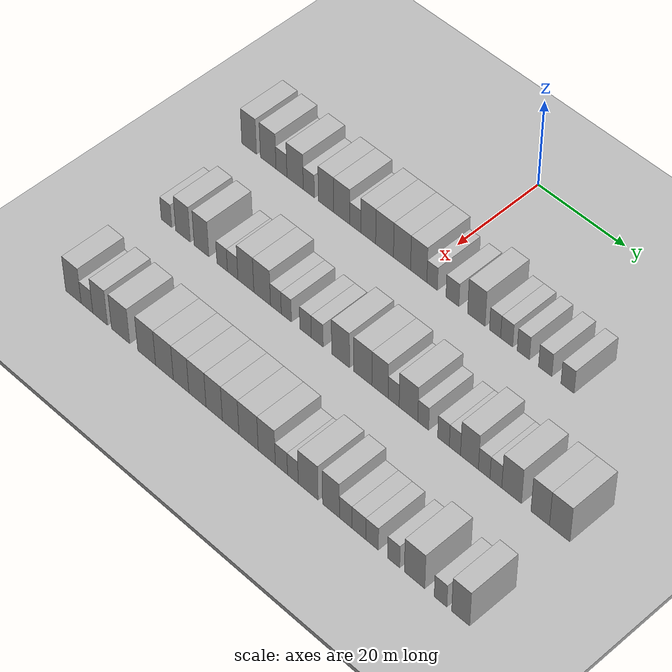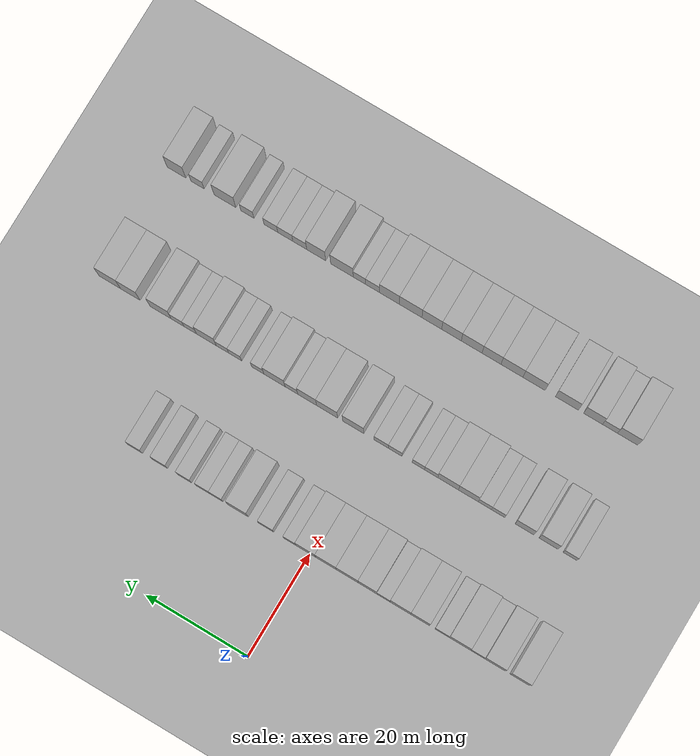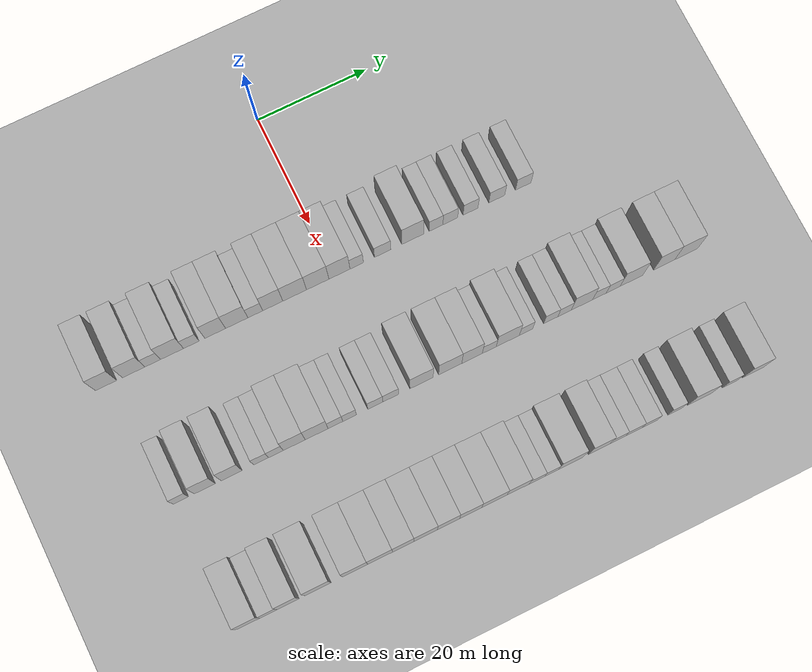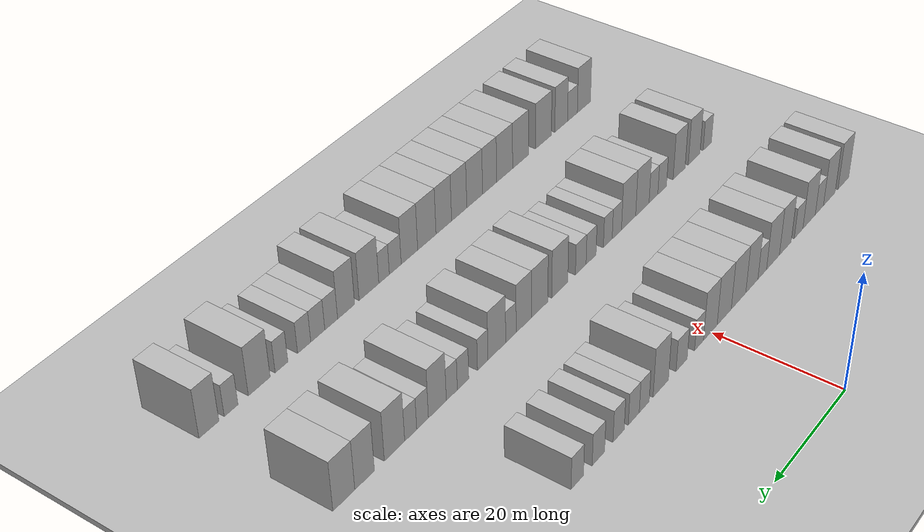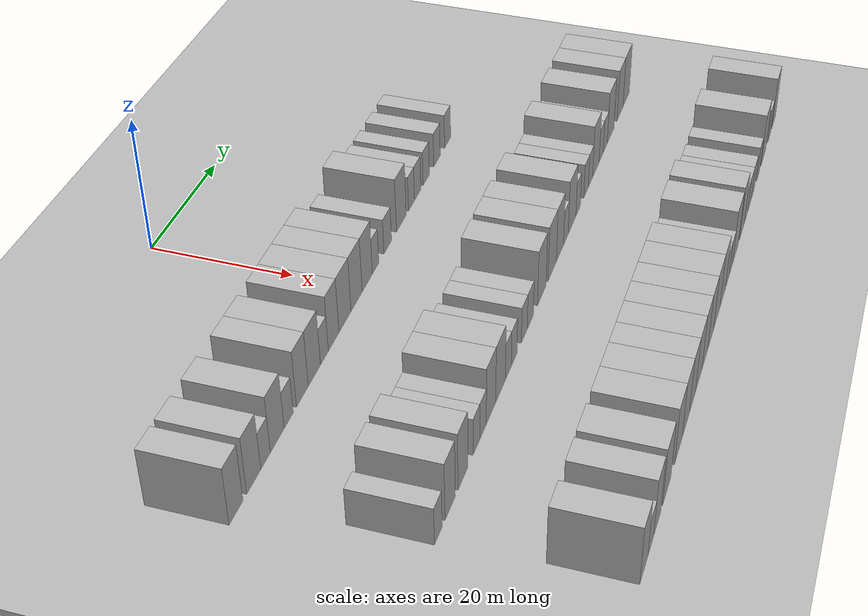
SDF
<sdf version="1.6">
 <world name="default">
  <include><name>ground_plane_1</name><uri>model://HANNAS_ground_plane</uri></include>
  <include>
   <name>ground_plane_2</name>
   <uri>model://HANNAS_ground_plane</uri>
   <pose>100 0 0  0 0 0</pose>
  </include>
  <model name="building_52">
   <static>1</static>
   <pose>25.0000 -40.7150 0 0.000000 0.000000 0.000000</pose>
   <link name="link">
    <pose>0 0 4.50 0 0 0</pose>
    <collision name="collision"><geometry><box><size>10.0000 3.7319 9.0000</size></box></geometry></collision>
    <visual name="visual">
     <cast_shadows>0</cast_shadows>
     <geometry><box><size>10.0000 3.7319 9.0000</size></box></geometry>
     <material>
      <script>
       <uri>model://HANNAS_wall/materials/scripts</uri>
       <uri>model://HANNAS_wall/materials/textures</uri>
       <name>vrc/HANNAS_wall</name>
      </script>
     </material>
    </visual>
   </link>
  </model>
  <model name="building_53">
   <static>1</static>
   <pose>25.0000 -35.8781 0 0.000000 0.000000 0.000000</pose>
   <link name="link">
    <pose>0 0 4.50 0 0 0</pose>
    <collision name="collision"><geometry><box><size>10.0000 3.9419 9.0000</size></box></geometry></collision>
    <visual name="visual">
     <cast_shadows>0</cast_shadows>
     <geometry><box><size>10.0000 3.9419 9.0000</size></box></geometry>
     <material>
      <script>
       <uri>model://HANNAS_wall/materials/scripts</uri>
       <uri>model://HANNAS_wall/materials/textures</uri>
       <name>vrc/HANNAS_wall</name>
      </script>
     </material>
    </visual>
   </link>
  </model>
  <model name="building_54">
   <static>1</static>
   <pose>25.0000 -32.5363 0 0.000000 0.000000 0.000000</pose>
   <link name="link">
    <pose>0 0 3.00 0 0 0</pose>
    <collision name="collision"><geometry><box><size>10.0000 2.7415 6.0000</size></box></geometry></collision>
    <visual name="visual">
     <cast_shadows>0</cast_shadows>
     <geometry><box><size>10.0000 2.7415 6.0000</size></box></geometry>
     <material>
      <script>
       <uri>model://HANNAS_wall/materials/scripts</uri>
       <uri>model://HANNAS_wall/materials/textures</uri>
       <name>vrc/HANNAS_wall</name>
      </script>
     </material>
    </visual>
   </link>
  </model>
  <model name="building_55">
   <static>1</static>
   <pose>25.0000 -29.1305 0 0.000000 0.000000 0.000000</pose>
   <link name="link">
    <pose>0 0 4.50 0 0 0</pose>
    <collision name="collision"><geometry><box><size>10.0000 4.0701 9.0000</size></box></geometry></collision>
    <visual name="visual">
     <cast_shadows>0</cast_shadows>
     <geometry><box><size>10.0000 4.0701 9.0000</size></box></geometry>
     <material>
      <script>
       <uri>model://HANNAS_wall/materials/scripts</uri>
       <uri>model://HANNAS_wall/materials/textures</uri>
       <name>vrc/HANNAS_wall</name>
      </script>
     </material>
    </visual>
   </link>
  </model>
  <model name="building_56">
   <static>1</static>
   <pose>25.0000 -25.7157 0 0.000000 0.000000 0.000000</pose>
   <link name="link">
    <pose>0 0 3.00 0 0 0</pose>
    <collision name="collision"><geometry><box><size>10.0000 2.7596 6.0000</size></box></geometry></collision>
    <visual name="visual">
     <cast_shadows>0</cast_shadows>
     <geometry><box><size>10.0000 2.7596 6.0000</size></box></geometry>
     <material>
      <script>
       <uri>model://HANNAS_wall/materials/scripts</uri>
       <uri>model://HANNAS_wall/materials/textures</uri>
       <name>vrc/HANNAS_wall</name>
      </script>
     </material>
    </visual>
   </link>
  </model>
  <model name="building_57">
   <static>1</static>
   <pose>25.0000 -21.4884 0 0.000000 0.000000 0.000000</pose>
   <link name="link">
    <pose>0 0 4.50 0 0 0</pose>
    <collision name="collision"><geometry><box><size>10.0000 3.6951 9.0000</size></box></geometry></collision>
    <visual name="visual">
     <cast_shadows>0</cast_shadows>
     <geometry><box><size>10.0000 3.6951 9.0000</size></box></geometry>
     <material>
      <script>
       <uri>model://HANNAS_wall/materials/scripts</uri>
       <uri>model://HANNAS_wall/materials/textures</uri>
       <name>vrc/HANNAS_wall</name>
      </script>
     </material>
    </visual>
   </link>
  </model>
  <model name="building_58">
   <static>1</static>
   <pose>25.0000 -17.6564 0 0.000000 0.000000 0.000000</pose>
   <link name="link">
    <pose>0 0 4.50 0 0 0</pose>
    <collision name="collision"><geometry><box><size>10.0000 3.9688 9.0000</size></box></geometry></collision>
    <visual name="visual">
     <cast_shadows>0</cast_shadows>
     <geometry><box><size>10.0000 3.9688 9.0000</size></box></geometry>
     <material>
      <script>
       <uri>model://HANNAS_wall/materials/scripts</uri>
       <uri>model://HANNAS_wall/materials/textures</uri>
       <name>vrc/HANNAS_wall</name>
      </script>
     </material>
    </visual>
   </link>
  </model>
  <model name="building_59">
   <static>1</static>
   <pose>25.0000 -14.3592 0 0.000000 0.000000 0.000000</pose>
   <link name="link">
    <pose>0 0 3.00 0 0 0</pose>
    <collision name="collision"><geometry><box><size>10.0000 2.6255 6.0000</size></box></geometry></collision>
    <visual name="visual">
     <cast_shadows>0</cast_shadows>
     <geometry><box><size>10.0000 2.6255 6.0000</size></box></geometry>
     <material>
      <script>
       <uri>model://HANNAS_wall/materials/scripts</uri>
       <uri>model://HANNAS_wall/materials/textures</uri>
       <name>vrc/HANNAS_wall</name>
      </script>
     </material>
    </visual>
   </link>
  </model>
  <model name="building_60">
   <static>1</static>
   <pose>25.0000 -11.2459 0 0.000000 0.000000 0.000000</pose>
   <link name="link">
    <pose>0 0 4.50 0 0 0</pose>
    <collision name="collision"><geometry><box><size>10.0000 3.6013 9.0000</size></box></geometry></collision>
    <visual name="visual">
     <cast_shadows>0</cast_shadows>
     <geometry><box><size>10.0000 3.6013 9.0000</size></box></geometry>
     <material>
      <script>
       <uri>model://HANNAS_wall/materials/scripts</uri>
       <uri>model://HANNAS_wall/materials/textures</uri>
       <name>vrc/HANNAS_wall</name>
      </script>
     </material>
    </visual>
   </link>
  </model>
  <model name="building_61">
   <static>1</static>
   <pose>25.0000 -7.3244 0 0.000000 0.000000 0.000000</pose>
   <link name="link">
    <pose>0 0 4.50 0 0 0</pose>
    <collision name="collision"><geometry><box><size>10.0000 4.2416 9.0000</size></box></geometry></collision>
    <visual name="visual">
     <cast_shadows>0</cast_shadows>
     <geometry><box><size>10.0000 4.2416 9.0000</size></box></geometry>
     <material>
      <script>
       <uri>model://HANNAS_wall/materials/scripts</uri>
       <uri>model://HANNAS_wall/materials/textures</uri>
       <name>vrc/HANNAS_wall</name>
      </script>
     </material>
    </visual>
   </link>
  </model>
  <model name="building_62">
   <static>1</static>
   <pose>25.0000 -3.1860 0 0.000000 0.000000 0.000000</pose>
   <link name="link">
    <pose>0 0 4.50 0 0 0</pose>
    <collision name="collision"><geometry><box><size>10.0000 4.0352 9.0000</size></box></geometry></collision>
    <visual name="visual">
     <cast_shadows>0</cast_shadows>
     <geometry><box><size>10.0000 4.0352 9.0000</size></box></geometry>
     <material>
      <script>
       <uri>model://HANNAS_wall/materials/scripts</uri>
       <uri>model://HANNAS_wall/materials/textures</uri>
       <name>vrc/HANNAS_wall</name>
      </script>
     </material>
    </visual>
   </link>
  </model>
  <model name="building_63">
   <static>1</static>
   <pose>25.0000 0.7372 0 0.000000 0.000000 0.000000</pose>
   <link name="link">
    <pose>0 0 4.50 0 0 0</pose>
    <collision name="collision"><geometry><box><size>10.0000 3.8112 9.0000</size></box></geometry></collision>
    <visual name="visual">
     <cast_shadows>0</cast_shadows>
     <geometry><box><size>10.0000 3.8112 9.0000</size></box></geometry>
     <material>
      <script>
       <uri>model://HANNAS_wall/materials/scripts</uri>
       <uri>model://HANNAS_wall/materials/textures</uri>
       <name>vrc/HANNAS_wall</name>
      </script>
     </material>
    </visual>
   </link>
  </model>
  <model name="building_64">
   <static>1</static>
   <pose>25.0000 3.8599 0 0.000000 0.000000 0.000000</pose>
   <link name="link">
    <pose>0 0 3.00 0 0 0</pose>
    <collision name="collision"><geometry><box><size>10.0000 2.4341 6.0000</size></box></geometry></collision>
    <visual name="visual">
     <cast_shadows>0</cast_shadows>
     <geometry><box><size>10.0000 2.4341 6.0000</size></box></geometry>
     <material>
      <script>
       <uri>model://HANNAS_wall/materials/scripts</uri>
       <uri>model://HANNAS_wall/materials/textures</uri>
       <name>vrc/HANNAS_wall</name>
      </script>
     </material>
    </visual>
   </link>
  </model>
  <model name="building_65">
   <static>1</static>
   <pose>25.0000 8.5607 0 0.000000 0.000000 0.000000</pose>
   <link name="link">
    <pose>0 0 3.00 0 0 0</pose>
    <collision name="collision"><geometry><box><size>10.0000 2.9674 6.0000</size></box></geometry></collision>
    <visual name="visual">
     <cast_shadows>0</cast_shadows>
     <geometry><box><size>10.0000 2.9674 6.0000</size></box></geometry>
     <material>
      <script>
       <uri>model://HANNAS_wall/materials/scripts</uri>
       <uri>model://HANNAS_wall/materials/textures</uri>
       <name>vrc/HANNAS_wall</name>
      </script>
     </material>
    </visual>
   </link>
  </model>
  <model name="building_66">
   <static>1</static>
   <pose>25.0000 14.0289 0 0.000000 0.000000 0.000000</pose>
   <link name="link">
    <pose>0 0 4.50 0 0 0</pose>
    <collision name="collision"><geometry><box><size>10.0000 3.9691 9.0000</size></box></geometry></collision>
    <visual name="visual">
     <cast_shadows>0</cast_shadows>
     <geometry><box><size>10.0000 3.9691 9.0000</size></box></geometry>
     <material>
      <script>
       <uri>model://HANNAS_wall/materials/scripts</uri>
       <uri>model://HANNAS_wall/materials/textures</uri>
       <name>vrc/HANNAS_wall</name>
      </script>
     </material>
    </visual>
   </link>
  </model>
  <model name="building_67">
   <static>1</static>
   <pose>25.0000 18.2662 0 0.000000 0.000000 0.000000</pose>
   <link name="link">
    <pose>0 0 3.00 0 0 0</pose>
    <collision name="collision"><geometry><box><size>10.0000 2.5054 6.0000</size></box></geometry></collision>
    <visual name="visual">
     <cast_shadows>0</cast_shadows>
     <geometry><box><size>10.0000 2.5054 6.0000</size></box></geometry>
     <material>
      <script>
       <uri>model://HANNAS_wall/materials/scripts</uri>
       <uri>model://HANNAS_wall/materials/textures</uri>
       <name>vrc/HANNAS_wall</name>
      </script>
     </material>
    </visual>
   </link>
  </model>
  <model name="building_68">
   <static>1</static>
   <pose>25.0000 20.8726 0 0.000000 0.000000 0.000000</pose>
   <link name="link">
    <pose>0 0 3.00 0 0 0</pose>
    <collision name="collision"><geometry><box><size>10.0000 2.7074 6.0000</size></box></geometry></collision>
    <visual name="visual">
     <cast_shadows>0</cast_shadows>
     <geometry><box><size>10.0000 2.7074 6.0000</size></box></geometry>
     <material>
      <script>
       <uri>model://HANNAS_wall/materials/scripts</uri>
       <uri>model://HANNAS_wall/materials/textures</uri>
       <name>vrc/HANNAS_wall</name>
      </script>
     </material>
    </visual>
   </link>
  </model>
  <model name="building_69">
   <static>1</static>
   <pose>25.0000 24.5879 0 0.000000 0.000000 0.000000</pose>
   <link name="link">
    <pose>0 0 3.00 0 0 0</pose>
    <collision name="collision"><geometry><box><size>10.0000 2.7233 6.0000</size></box></geometry></collision>
    <visual name="visual">
     <cast_shadows>0</cast_shadows>
     <geometry><box><size>10.0000 2.7233 6.0000</size></box></geometry>
     <material>
      <script>
       <uri>model://HANNAS_wall/materials/scripts</uri>
       <uri>model://HANNAS_wall/materials/textures</uri>
       <name>vrc/HANNAS_wall</name>
      </script>
     </material>
    </visual>
   </link>
  </model>
  <model name="building_70">
   <static>1</static>
   <pose>25.0000 29.4149 0 0.000000 0.000000 0.000000</pose>
   <link name="link">
    <pose>0 0 3.00 0 0 0</pose>
    <collision name="collision"><geometry><box><size>10.0000 2.9307 6.0000</size></box></geometry></collision>
    <visual name="visual">
     <cast_shadows>0</cast_shadows>
     <geometry><box><size>10.0000 2.9307 6.0000</size></box></geometry>
     <material>
      <script>
       <uri>model://HANNAS_wall/materials/scripts</uri>
       <uri>model://HANNAS_wall/materials/textures</uri>
       <name>vrc/HANNAS_wall</name>
      </script>
     </material>
    </visual>
   </link>
  </model>
  <model name="building_71">
   <static>1</static>
   <pose>25.0000 34.3067 0 0.000000 0.000000 0.000000</pose>
   <link name="link">
    <pose>0 0 3.00 0 0 0</pose>
    <collision name="collision"><geometry><box><size>10.0000 2.8530 6.0000</size></box></geometry></collision>
    <visual name="visual">
     <cast_shadows>0</cast_shadows>
     <geometry><box><size>10.0000 2.8530 6.0000</size></box></geometry>
     <material>
      <script>
       <uri>model://HANNAS_wall/materials/scripts</uri>
       <uri>model://HANNAS_wall/materials/textures</uri>
       <name>vrc/HANNAS_wall</name>
      </script>
     </material>
    </visual>
   </link>
  </model>
  <model name="building_164">
   <static>1</static>
   <pose>47.0000 -37.5440 0 0.000000 0.000000 0.000000</pose>
   <link name="link">
    <pose>0 0 3.00 0 0 0</pose>
    <collision name="collision"><geometry><box><size>10.0000 2.6597 6.0000</size></box></geometry></collision>
    <visual name="visual">
     <cast_shadows>0</cast_shadows>
     <geometry><box><size>10.0000 2.6597 6.0000</size></box></geometry>
     <material>
      <script>
       <uri>model://HANNAS_wall/materials/scripts</uri>
       <uri>model://HANNAS_wall/materials/textures</uri>
       <name>vrc/HANNAS_wall</name>
      </script>
     </material>
    </visual>
   </link>
  </model>
  <model name="building_165">
   <static>1</static>
   <pose>47.0000 -33.3802 0 0.000000 0.000000 0.000000</pose>
   <link name="link">
    <pose>0 0 4.50 0 0 0</pose>
    <collision name="collision"><geometry><box><size>10.0000 3.6680 9.0000</size></box></geometry></collision>
    <visual name="visual">
     <cast_shadows>0</cast_shadows>
     <geometry><box><size>10.0000 3.6680 9.0000</size></box></geometry>
     <material>
      <script>
       <uri>model://HANNAS_wall/materials/scripts</uri>
       <uri>model://HANNAS_wall/materials/textures</uri>
       <name>vrc/HANNAS_wall</name>
      </script>
     </material>
    </visual>
   </link>
  </model>
  <model name="building_166">
   <static>1</static>
   <pose>47.0000 -28.7226 0 0.000000 0.000000 0.000000</pose>
   <link name="link">
    <pose>0 0 4.50 0 0 0</pose>
    <collision name="collision"><geometry><box><size>10.0000 3.6471 9.0000</size></box></geometry></collision>
    <visual name="visual">
     <cast_shadows>0</cast_shadows>
     <geometry><box><size>10.0000 3.6471 9.0000</size></box></geometry>
     <material>
      <script>
       <uri>model://HANNAS_wall/materials/scripts</uri>
       <uri>model://HANNAS_wall/materials/textures</uri>
       <name>vrc/HANNAS_wall</name>
      </script>
     </material>
    </visual>
   </link>
  </model>
  <model name="building_167">
   <static>1</static>
   <pose>47.0000 -23.6000 0 0.000000 0.000000 0.000000</pose>
   <link name="link">
    <pose>0 0 3.00 0 0 0</pose>
    <collision name="collision"><geometry><box><size>10.0000 2.5983 6.0000</size></box></geometry></collision>
    <visual name="visual">
     <cast_shadows>0</cast_shadows>
     <geometry><box><size>10.0000 2.5983 6.0000</size></box></geometry>
     <material>
      <script>
       <uri>model://HANNAS_wall/materials/scripts</uri>
       <uri>model://HANNAS_wall/materials/textures</uri>
       <name>vrc/HANNAS_wall</name>
      </script>
     </material>
    </visual>
   </link>
  </model>
  <model name="building_168">
   <static>1</static>
   <pose>47.0000 -21.0116 0 0.000000 0.000000 0.000000</pose>
   <link name="link">
    <pose>0 0 3.00 0 0 0</pose>
    <collision name="collision"><geometry><box><size>10.0000 2.5785 6.0000</size></box></geometry></collision>
    <visual name="visual">
     <cast_shadows>0</cast_shadows>
     <geometry><box><size>10.0000 2.5785 6.0000</size></box></geometry>
     <material>
      <script>
       <uri>model://HANNAS_wall/materials/scripts</uri>
       <uri>model://HANNAS_wall/materials/textures</uri>
       <name>vrc/HANNAS_wall</name>
      </script>
     </material>
    </visual>
   </link>
  </model>
  <model name="building_169">
   <static>1</static>
   <pose>47.0000 -17.7810 0 0.000000 0.000000 0.000000</pose>
   <link name="link">
    <pose>0 0 4.50 0 0 0</pose>
    <collision name="collision"><geometry><box><size>10.0000 3.8826 9.0000</size></box></geometry></collision>
    <visual name="visual">
     <cast_shadows>0</cast_shadows>
     <geometry><box><size>10.0000 3.8826 9.0000</size></box></geometry>
     <material>
      <script>
       <uri>model://HANNAS_wall/materials/scripts</uri>
       <uri>model://HANNAS_wall/materials/textures</uri>
       <name>vrc/HANNAS_wall</name>
      </script>
     </material>
    </visual>
   </link>
  </model>
  <model name="building_170">
   <static>1</static>
   <pose>47.0000 -13.8256 0 0.000000 0.000000 0.000000</pose>
   <link name="link">
    <pose>0 0 4.50 0 0 0</pose>
    <collision name="collision"><geometry><box><size>10.0000 4.0281 9.0000</size></box></geometry></collision>
    <visual name="visual">
     <cast_shadows>0</cast_shadows>
     <geometry><box><size>10.0000 4.0281 9.0000</size></box></geometry>
     <material>
      <script>
       <uri>model://HANNAS_wall/materials/scripts</uri>
       <uri>model://HANNAS_wall/materials/textures</uri>
       <name>vrc/HANNAS_wall</name>
      </script>
     </material>
    </visual>
   </link>
  </model>
  <model name="building_171">
   <static>1</static>
   <pose>47.0000 -10.5169 0 0.000000 0.000000 0.000000</pose>
   <link name="link">
    <pose>0 0 3.00 0 0 0</pose>
    <collision name="collision"><geometry><box><size>10.0000 2.5893 6.0000</size></box></geometry></collision>
    <visual name="visual">
     <cast_shadows>0</cast_shadows>
     <geometry><box><size>10.0000 2.5893 6.0000</size></box></geometry>
     <material>
      <script>
       <uri>model://HANNAS_wall/materials/scripts</uri>
       <uri>model://HANNAS_wall/materials/textures</uri>
       <name>vrc/HANNAS_wall</name>
      </script>
     </material>
    </visual>
   </link>
  </model>
  <model name="building_172">
   <static>1</static>
   <pose>47.0000 -8.0122 0 0.000000 0.000000 0.000000</pose>
   <link name="link">
    <pose>0 0 3.00 0 0 0</pose>
    <collision name="collision"><geometry><box><size>10.0000 2.4201 6.0000</size></box></geometry></collision>
    <visual name="visual">
     <cast_shadows>0</cast_shadows>
     <geometry><box><size>10.0000 2.4201 6.0000</size></box></geometry>
     <material>
      <script>
       <uri>model://HANNAS_wall/materials/scripts</uri>
       <uri>model://HANNAS_wall/materials/textures</uri>
       <name>vrc/HANNAS_wall</name>
      </script>
     </material>
    </visual>
   </link>
  </model>
  <model name="building_173">
   <static>1</static>
   <pose>47.0000 -3.4615 0 0.000000 0.000000 0.000000</pose>
   <link name="link">
    <pose>0 0 3.00 0 0 0</pose>
    <collision name="collision"><geometry><box><size>10.0000 2.6813 6.0000</size></box></geometry></collision>
    <visual name="visual">
     <cast_shadows>0</cast_shadows>
     <geometry><box><size>10.0000 2.6813 6.0000</size></box></geometry>
     <material>
      <script>
       <uri>model://HANNAS_wall/materials/scripts</uri>
       <uri>model://HANNAS_wall/materials/textures</uri>
       <name>vrc/HANNAS_wall</name>
      </script>
     </material>
    </visual>
   </link>
  </model>
  <model name="building_174">
   <static>1</static>
   <pose>47.0000 -0.7155 0 0.000000 0.000000 0.000000</pose>
   <link name="link">
    <pose>0 0 3.00 0 0 0</pose>
    <collision name="collision"><geometry><box><size>10.0000 2.8107 6.0000</size></box></geometry></collision>
    <visual name="visual">
     <cast_shadows>0</cast_shadows>
     <geometry><box><size>10.0000 2.8107 6.0000</size></box></geometry>
     <material>
      <script>
       <uri>model://HANNAS_wall/materials/scripts</uri>
       <uri>model://HANNAS_wall/materials/textures</uri>
       <name>vrc/HANNAS_wall</name>
      </script>
     </material>
    </visual>
   </link>
  </model>
  <model name="building_175">
   <static>1</static>
   <pose>47.0000 4.7531 0 0.000000 0.000000 0.000000</pose>
   <link name="link">
    <pose>0 0 4.50 0 0 0</pose>
    <collision name="collision"><geometry><box><size>10.0000 4.1265 9.0000</size></box></geometry></collision>
    <visual name="visual">
     <cast_shadows>0</cast_shadows>
     <geometry><box><size>10.0000 4.1265 9.0000</size></box></geometry>
     <material>
      <script>
       <uri>model://HANNAS_wall/materials/scripts</uri>
       <uri>model://HANNAS_wall/materials/textures</uri>
       <name>vrc/HANNAS_wall</name>
      </script>
     </material>
    </visual>
   </link>
  </model>
  <model name="building_176">
   <static>1</static>
   <pose>47.0000 9.8810 0 0.000000 0.000000 0.000000</pose>
   <link name="link">
    <pose>0 0 4.50 0 0 0</pose>
    <collision name="collision"><geometry><box><size>10.0000 4.1294 9.0000</size></box></geometry></collision>
    <visual name="visual">
     <cast_shadows>0</cast_shadows>
     <geometry><box><size>10.0000 4.1294 9.0000</size></box></geometry>
     <material>
      <script>
       <uri>model://HANNAS_wall/materials/scripts</uri>
       <uri>model://HANNAS_wall/materials/textures</uri>
       <name>vrc/HANNAS_wall</name>
      </script>
     </material>
    </visual>
   </link>
  </model>
  <model name="building_177">
   <static>1</static>
   <pose>47.0000 13.7956 0 0.000000 0.000000 0.000000</pose>
   <link name="link">
    <pose>0 0 4.50 0 0 0</pose>
    <collision name="collision"><geometry><box><size>10.0000 3.6997 9.0000</size></box></geometry></collision>
    <visual name="visual">
     <cast_shadows>0</cast_shadows>
     <geometry><box><size>10.0000 3.6997 9.0000</size></box></geometry>
     <material>
      <script>
       <uri>model://HANNAS_wall/materials/scripts</uri>
       <uri>model://HANNAS_wall/materials/textures</uri>
       <name>vrc/HANNAS_wall</name>
      </script>
     </material>
    </visual>
   </link>
  </model>
  <model name="building_178">
   <static>1</static>
   <pose>47.0000 16.8963 0 0.000000 0.000000 0.000000</pose>
   <link name="link">
    <pose>0 0 3.00 0 0 0</pose>
    <collision name="collision"><geometry><box><size>10.0000 2.5018 6.0000</size></box></geometry></collision>
    <visual name="visual">
     <cast_shadows>0</cast_shadows>
     <geometry><box><size>10.0000 2.5018 6.0000</size></box></geometry>
     <material>
      <script>
       <uri>model://HANNAS_wall/materials/scripts</uri>
       <uri>model://HANNAS_wall/materials/textures</uri>
       <name>vrc/HANNAS_wall</name>
      </script>
     </material>
    </visual>
   </link>
  </model>
  <model name="building_179">
   <static>1</static>
   <pose>47.0000 20.2354 0 0.000000 0.000000 0.000000</pose>
   <link name="link">
    <pose>0 0 4.50 0 0 0</pose>
    <collision name="collision"><geometry><box><size>10.0000 4.1764 9.0000</size></box></geometry></collision>
    <visual name="visual">
     <cast_shadows>0</cast_shadows>
     <geometry><box><size>10.0000 4.1764 9.0000</size></box></geometry>
     <material>
      <script>
       <uri>model://HANNAS_wall/materials/scripts</uri>
       <uri>model://HANNAS_wall/materials/textures</uri>
       <name>vrc/HANNAS_wall</name>
      </script>
     </material>
    </visual>
   </link>
  </model>
  <model name="building_180">
   <static>1</static>
   <pose>47.0000 23.5338 0 0.000000 0.000000 0.000000</pose>
   <link name="link">
    <pose>0 0 3.00 0 0 0</pose>
    <collision name="collision"><geometry><box><size>10.0000 2.4204 6.0000</size></box></geometry></collision>
    <visual name="visual">
     <cast_shadows>0</cast_shadows>
     <geometry><box><size>10.0000 2.4204 6.0000</size></box></geometry>
     <material>
      <script>
       <uri>model://HANNAS_wall/materials/scripts</uri>
       <uri>model://HANNAS_wall/materials/textures</uri>
       <name>vrc/HANNAS_wall</name>
      </script>
     </material>
    </visual>
   </link>
  </model>
  <model name="building_181">
   <static>1</static>
   <pose>47.0000 28.0282 0 0.000000 0.000000 0.000000</pose>
   <link name="link">
    <pose>0 0 3.00 0 0 0</pose>
    <collision name="collision"><geometry><box><size>10.0000 2.5684 6.0000</size></box></geometry></collision>
    <visual name="visual">
     <cast_shadows>0</cast_shadows>
     <geometry><box><size>10.0000 2.5684 6.0000</size></box></geometry>
     <material>
      <script>
       <uri>model://HANNAS_wall/materials/scripts</uri>
       <uri>model://HANNAS_wall/materials/textures</uri>
       <name>vrc/HANNAS_wall</name>
      </script>
     </material>
    </visual>
   </link>
  </model>
  <model name="building_182">
   <static>1</static>
   <pose>47.0000 30.5354 0 0.000000 0.000000 0.000000</pose>
   <link name="link">
    <pose>0 0 3.00 0 0 0</pose>
    <collision name="collision"><geometry><box><size>10.0000 2.4459 6.0000</size></box></geometry></collision>
    <visual name="visual">
     <cast_shadows>0</cast_shadows>
     <geometry><box><size>10.0000 2.4459 6.0000</size></box></geometry>
     <material>
      <script>
       <uri>model://HANNAS_wall/materials/scripts</uri>
       <uri>model://HANNAS_wall/materials/textures</uri>
       <name>vrc/HANNAS_wall</name>
      </script>
     </material>
    </visual>
   </link>
  </model>
  <model name="building_183">
   <static>1</static>
   <pose>47.0000 33.7078 0 0.000000 0.000000 0.000000</pose>
   <link name="link">
    <pose>0 0 4.50 0 0 0</pose>
    <collision name="collision"><geometry><box><size>10.0000 3.8990 9.0000</size></box></geometry></collision>
    <visual name="visual">
     <cast_shadows>0</cast_shadows>
     <geometry><box><size>10.0000 3.8990 9.0000</size></box></geometry>
     <material>
      <script>
       <uri>model://HANNAS_wall/materials/scripts</uri>
       <uri>model://HANNAS_wall/materials/textures</uri>
       <name>vrc/HANNAS_wall</name>
      </script>
     </material>
    </visual>
   </link>
  </model>
  <model name="building_184">
   <static>1</static>
   <pose>47.0000 36.9069 0 0.000000 0.000000 0.000000</pose>
   <link name="link">
    <pose>0 0 3.00 0 0 0</pose>
    <collision name="collision"><geometry><box><size>10.0000 2.4992 6.0000</size></box></geometry></collision>
    <visual name="visual">
     <cast_shadows>0</cast_shadows>
     <geometry><box><size>10.0000 2.4992 6.0000</size></box></geometry>
     <material>
      <script>
       <uri>model://HANNAS_wall/materials/scripts</uri>
       <uri>model://HANNAS_wall/materials/textures</uri>
       <name>vrc/HANNAS_wall</name>
      </script>
     </material>
    </visual>
   </link>
  </model>
  <model name="building_185">
   <static>1</static>
   <pose>47.0000 39.4202 0 0.000000 0.000000 0.000000</pose>
   <link name="link">
    <pose>0 0 3.00 0 0 0</pose>
    <collision name="collision"><geometry><box><size>10.0000 2.5274 6.0000</size></box></geometry></collision>
    <visual name="visual">
     <cast_shadows>0</cast_shadows>
     <geometry><box><size>10.0000 2.5274 6.0000</size></box></geometry>
     <material>
      <script>
       <uri>model://HANNAS_wall/materials/scripts</uri>
       <uri>model://HANNAS_wall/materials/textures</uri>
       <name>vrc/HANNAS_wall</name>
      </script>
     </material>
    </visual>
   </link>
  </model>
  <model name="building_186">
   <static>1</static>
   <pose>47.0000 42.7860 0 0.000000 0.000000 0.000000</pose>
   <link name="link">
    <pose>0 0 4.50 0 0 0</pose>
    <collision name="collision"><geometry><box><size>10.0000 4.2042 9.0000</size></box></geometry></collision>
    <visual name="visual">
     <cast_shadows>0</cast_shadows>
     <geometry><box><size>10.0000 4.2042 9.0000</size></box></geometry>
     <material>
      <script>
       <uri>model://HANNAS_wall/materials/scripts</uri>
       <uri>model://HANNAS_wall/materials/textures</uri>
       <name>vrc/HANNAS_wall</name>
      </script>
     </material>
    </visual>
   </link>
  </model>
  <model name="building_187">
   <static>1</static>
   <pose>47.0000 48.8346 0 0.000000 0.000000 0.000000</pose>
   <link name="link">
    <pose>0 0 4.50 0 0 0</pose>
    <collision name="collision"><geometry><box><size>10.0000 3.8931 9.0000</size></box></geometry></collision>
    <visual name="visual">
     <cast_shadows>0</cast_shadows>
     <geometry><box><size>10.0000 3.8931 9.0000</size></box></geometry>
     <material>
      <script>
       <uri>model://HANNAS_wall/materials/scripts</uri>
       <uri>model://HANNAS_wall/materials/textures</uri>
       <name>vrc/HANNAS_wall</name>
      </script>
     </material>
    </visual>
   </link>
  </model>
  <model name="building_188">
   <static>1</static>
   <pose>47.0000 52.9090 0 0.000000 0.000000 0.000000</pose>
   <link name="link">
    <pose>0 0 4.50 0 0 0</pose>
    <collision name="collision"><geometry><box><size>10.0000 4.2557 9.0000</size></box></geometry></collision>
    <visual name="visual">
     <cast_shadows>0</cast_shadows>
     <geometry><box><size>10.0000 4.2557 9.0000</size></box></geometry>
     <material>
      <script>
       <uri>model://HANNAS_wall/materials/scripts</uri>
       <uri>model://HANNAS_wall/materials/textures</uri>
       <name>vrc/HANNAS_wall</name>
      </script>
     </material>
    </visual>
   </link>
  </model>
  <model name="building_272">
   <static>1</static>
   <pose>69.0000 -35.8994 0 0.000000 0.000000 0.000000</pose>
   <link name="link">
    <pose>0 0 4.50 0 0 0</pose>
    <collision name="collision"><geometry><box><size>10.0000 3.9425 9.0000</size></box></geometry></collision>
    <visual name="visual">
     <cast_shadows>0</cast_shadows>
     <geometry><box><size>10.0000 3.9425 9.0000</size></box></geometry>
     <material>
      <script>
       <uri>model://HANNAS_wall/materials/scripts</uri>
       <uri>model://HANNAS_wall/materials/textures</uri>
       <name>vrc/HANNAS_wall</name>
      </script>
     </material>
    </visual>
   </link>
  </model>
  <model name="building_273">
   <static>1</static>
   <pose>69.0000 -32.4656 0 0.000000 0.000000 0.000000</pose>
   <link name="link">
    <pose>0 0 3.00 0 0 0</pose>
    <collision name="collision"><geometry><box><size>10.0000 2.9249 6.0000</size></box></geometry></collision>
    <visual name="visual">
     <cast_shadows>0</cast_shadows>
     <geometry><box><size>10.0000 2.9249 6.0000</size></box></geometry>
     <material>
      <script>
       <uri>model://HANNAS_wall/materials/scripts</uri>
       <uri>model://HANNAS_wall/materials/textures</uri>
       <name>vrc/HANNAS_wall</name>
      </script>
     </material>
    </visual>
   </link>
  </model>
  <model name="building_274">
   <static>1</static>
   <pose>69.0000 -29.1582 0 0.000000 0.000000 0.000000</pose>
   <link name="link">
    <pose>0 0 4.50 0 0 0</pose>
    <collision name="collision"><geometry><box><size>10.0000 3.6900 9.0000</size></box></geometry></collision>
    <visual name="visual">
     <cast_shadows>0</cast_shadows>
     <geometry><box><size>10.0000 3.6900 9.0000</size></box></geometry>
     <material>
      <script>
       <uri>model://HANNAS_wall/materials/scripts</uri>
       <uri>model://HANNAS_wall/materials/textures</uri>
       <name>vrc/HANNAS_wall</name>
      </script>
     </material>
    </visual>
   </link>
  </model>
  <model name="building_275">
   <static>1</static>
   <pose>69.0000 -24.0636 0 0.000000 0.000000 0.000000</pose>
   <link name="link">
    <pose>0 0 4.50 0 0 0</pose>
    <collision name="collision"><geometry><box><size>10.0000 4.4990 9.0000</size></box></geometry></collision>
    <visual name="visual">
     <cast_shadows>0</cast_shadows>
     <geometry><box><size>10.0000 4.4990 9.0000</size></box></geometry>
     <material>
      <script>
       <uri>model://HANNAS_wall/materials/scripts</uri>
       <uri>model://HANNAS_wall/materials/textures</uri>
       <name>vrc/HANNAS_wall</name>
      </script>
     </material>
    </visual>
   </link>
  </model>
  <model name="building_276">
   <static>1</static>
   <pose>69.0000 -17.6321 0 0.000000 0.000000 0.000000</pose>
   <link name="link">
    <pose>0 0 4.50 0 0 0</pose>
    <collision name="collision"><geometry><box><size>10.0000 4.3640 9.0000</size></box></geometry></collision>
    <visual name="visual">
     <cast_shadows>0</cast_shadows>
     <geometry><box><size>10.0000 4.3640 9.0000</size></box></geometry>
     <material>
      <script>
       <uri>model://HANNAS_wall/materials/scripts</uri>
       <uri>model://HANNAS_wall/materials/textures</uri>
       <name>vrc/HANNAS_wall</name>
      </script>
     </material>
    </visual>
   </link>
  </model>
  <model name="building_277">
   <static>1</static>
   <pose>69.0000 -13.2997 0 0.000000 0.000000 0.000000</pose>
   <link name="link">
    <pose>0 0 4.50 0 0 0</pose>
    <collision name="collision"><geometry><box><size>10.0000 4.3009 9.0000</size></box></geometry></collision>
    <visual name="visual">
     <cast_shadows>0</cast_shadows>
     <geometry><box><size>10.0000 4.3009 9.0000</size></box></geometry>
     <material>
      <script>
       <uri>model://HANNAS_wall/materials/scripts</uri>
       <uri>model://HANNAS_wall/materials/textures</uri>
       <name>vrc/HANNAS_wall</name>
      </script>
     </material>
    </visual>
   </link>
  </model>
  <model name="building_278">
   <static>1</static>
   <pose>69.0000 -9.2899 0 0.000000 0.000000 0.000000</pose>
   <link name="link">
    <pose>0 0 4.50 0 0 0</pose>
    <collision name="collision"><geometry><box><size>10.0000 3.7185 9.0000</size></box></geometry></collision>
    <visual name="visual">
     <cast_shadows>0</cast_shadows>
     <geometry><box><size>10.0000 3.7185 9.0000</size></box></geometry>
     <material>
      <script>
       <uri>model://HANNAS_wall/materials/scripts</uri>
       <uri>model://HANNAS_wall/materials/textures</uri>
       <name>vrc/HANNAS_wall</name>
      </script>
     </material>
    </visual>
   </link>
  </model>
  <model name="building_279">
   <static>1</static>
   <pose>69.0000 -5.3840 0 0.000000 0.000000 0.000000</pose>
   <link name="link">
    <pose>0 0 4.50 0 0 0</pose>
    <collision name="collision"><geometry><box><size>10.0000 4.0934 9.0000</size></box></geometry></collision>
    <visual name="visual">
     <cast_shadows>0</cast_shadows>
     <geometry><box><size>10.0000 4.0934 9.0000</size></box></geometry>
     <material>
      <script>
       <uri>model://HANNAS_wall/materials/scripts</uri>
       <uri>model://HANNAS_wall/materials/textures</uri>
       <name>vrc/HANNAS_wall</name>
      </script>
     </material>
    </visual>
   </link>
  </model>
  <model name="building_280">
   <static>1</static>
   <pose>69.0000 -1.4060 0 0.000000 0.000000 0.000000</pose>
   <link name="link">
    <pose>0 0 4.50 0 0 0</pose>
    <collision name="collision"><geometry><box><size>10.0000 3.8626 9.0000</size></box></geometry></collision>
    <visual name="visual">
     <cast_shadows>0</cast_shadows>
     <geometry><box><size>10.0000 3.8626 9.0000</size></box></geometry>
     <material>
      <script>
       <uri>model://HANNAS_wall/materials/scripts</uri>
       <uri>model://HANNAS_wall/materials/textures</uri>
       <name>vrc/HANNAS_wall</name>
      </script>
     </material>
    </visual>
   </link>
  </model>
  <model name="building_281">
   <static>1</static>
   <pose>69.0000 2.4600 0 0.000000 0.000000 0.000000</pose>
   <link name="link">
    <pose>0 0 4.50 0 0 0</pose>
    <collision name="collision"><geometry><box><size>10.0000 3.8693 9.0000</size></box></geometry></collision>
    <visual name="visual">
     <cast_shadows>0</cast_shadows>
     <geometry><box><size>10.0000 3.8693 9.0000</size></box></geometry>
     <material>
      <script>
       <uri>model://HANNAS_wall/materials/scripts</uri>
       <uri>model://HANNAS_wall/materials/textures</uri>
       <name>vrc/HANNAS_wall</name>
      </script>
     </material>
    </visual>
   </link>
  </model>
  <model name="building_282">
   <static>1</static>
   <pose>69.0000 6.6256 0 0.000000 0.000000 0.000000</pose>
   <link name="link">
    <pose>0 0 4.50 0 0 0</pose>
    <collision name="collision"><geometry><box><size>10.0000 4.4620 9.0000</size></box></geometry></collision>
    <visual name="visual">
     <cast_shadows>0</cast_shadows>
     <geometry><box><size>10.0000 4.4620 9.0000</size></box></geometry>
     <material>
      <script>
       <uri>model://HANNAS_wall/materials/scripts</uri>
       <uri>model://HANNAS_wall/materials/textures</uri>
       <name>vrc/HANNAS_wall</name>
      </script>
     </material>
    </visual>
   </link>
  </model>
  <model name="building_283">
   <static>1</static>
   <pose>69.0000 10.8194 0 0.000000 0.000000 0.000000</pose>
   <link name="link">
    <pose>0 0 4.50 0 0 0</pose>
    <collision name="collision"><geometry><box><size>10.0000 3.9255 9.0000</size></box></geometry></collision>
    <visual name="visual">
     <cast_shadows>0</cast_shadows>
     <geometry><box><size>10.0000 3.9255 9.0000</size></box></geometry>
     <material>
      <script>
       <uri>model://HANNAS_wall/materials/scripts</uri>
       <uri>model://HANNAS_wall/materials/textures</uri>
       <name>vrc/HANNAS_wall</name>
      </script>
     </material>
    </visual>
   </link>
  </model>
  <model name="building_284">
   <static>1</static>
   <pose>69.0000 14.1673 0 0.000000 0.000000 0.000000</pose>
   <link name="link">
    <pose>0 0 3.00 0 0 0</pose>
    <collision name="collision"><geometry><box><size>10.0000 2.7705 6.0000</size></box></geometry></collision>
    <visual name="visual">
     <cast_shadows>0</cast_shadows>
     <geometry><box><size>10.0000 2.7705 6.0000</size></box></geometry>
     <material>
      <script>
       <uri>model://HANNAS_wall/materials/scripts</uri>
       <uri>model://HANNAS_wall/materials/textures</uri>
       <name>vrc/HANNAS_wall</name>
      </script>
     </material>
    </visual>
   </link>
  </model>
  <model name="building_285">
   <static>1</static>
   <pose>69.0000 16.7652 0 0.000000 0.000000 0.000000</pose>
   <link name="link">
    <pose>0 0 3.00 0 0 0</pose>
    <collision name="collision"><geometry><box><size>10.0000 2.4253 6.0000</size></box></geometry></collision>
    <visual name="visual">
     <cast_shadows>0</cast_shadows>
     <geometry><box><size>10.0000 2.4253 6.0000</size></box></geometry>
     <material>
      <script>
       <uri>model://HANNAS_wall/materials/scripts</uri>
       <uri>model://HANNAS_wall/materials/textures</uri>
       <name>vrc/HANNAS_wall</name>
      </script>
     </material>
    </visual>
   </link>
  </model>
  <model name="building_286">
   <static>1</static>
   <pose>69.0000 20.2075 0 0.000000 0.000000 0.000000</pose>
   <link name="link">
    <pose>0 0 4.50 0 0 0</pose>
    <collision name="collision"><geometry><box><size>10.0000 4.4592 9.0000</size></box></geometry></collision>
    <visual name="visual">
     <cast_shadows>0</cast_shadows>
     <geometry><box><size>10.0000 4.4592 9.0000</size></box></geometry>
     <material>
      <script>
       <uri>model://HANNAS_wall/materials/scripts</uri>
       <uri>model://HANNAS_wall/materials/textures</uri>
       <name>vrc/HANNAS_wall</name>
      </script>
     </material>
    </visual>
   </link>
  </model>
  <model name="building_287">
   <static>1</static>
   <pose>69.0000 25.3105 0 0.000000 0.000000 0.000000</pose>
   <link name="link">
    <pose>0 0 4.50 0 0 0</pose>
    <collision name="collision"><geometry><box><size>10.0000 3.7468 9.0000</size></box></geometry></collision>
    <visual name="visual">
     <cast_shadows>0</cast_shadows>
     <geometry><box><size>10.0000 3.7468 9.0000</size></box></geometry>
     <material>
      <script>
       <uri>model://HANNAS_wall/materials/scripts</uri>
       <uri>model://HANNAS_wall/materials/textures</uri>
       <name>vrc/HANNAS_wall</name>
      </script>
     </material>
    </visual>
   </link>
  </model>
  <model name="building_288">
   <static>1</static>
   <pose>69.0000 28.5653 0 0.000000 0.000000 0.000000</pose>
   <link name="link">
    <pose>0 0 3.00 0 0 0</pose>
    <collision name="collision"><geometry><box><size>10.0000 2.7629 6.0000</size></box></geometry></collision>
    <visual name="visual">
     <cast_shadows>0</cast_shadows>
     <geometry><box><size>10.0000 2.7629 6.0000</size></box></geometry>
     <material>
      <script>
       <uri>model://HANNAS_wall/materials/scripts</uri>
       <uri>model://HANNAS_wall/materials/textures</uri>
       <name>vrc/HANNAS_wall</name>
      </script>
     </material>
    </visual>
   </link>
  </model>
  <model name="building_289">
   <static>1</static>
   <pose>69.0000 31.4390 0 0.000000 0.000000 0.000000</pose>
   <link name="link">
    <pose>0 0 3.00 0 0 0</pose>
    <collision name="collision"><geometry><box><size>10.0000 2.9846 6.0000</size></box></geometry></collision>
    <visual name="visual">
     <cast_shadows>0</cast_shadows>
     <geometry><box><size>10.0000 2.9846 6.0000</size></box></geometry>
     <material>
      <script>
       <uri>model://HANNAS_wall/materials/scripts</uri>
       <uri>model://HANNAS_wall/materials/textures</uri>
       <name>vrc/HANNAS_wall</name>
      </script>
     </material>
    </visual>
   </link>
  </model>
  <model name="building_290">
   <static>1</static>
   <pose>69.0000 34.3103 0 0.000000 0.000000 0.000000</pose>
   <link name="link">
    <pose>0 0 3.00 0 0 0</pose>
    <collision name="collision"><geometry><box><size>10.0000 2.7580 6.0000</size></box></geometry></collision>
    <visual name="visual">
     <cast_shadows>0</cast_shadows>
     <geometry><box><size>10.0000 2.7580 6.0000</size></box></geometry>
     <material>
      <script>
       <uri>model://HANNAS_wall/materials/scripts</uri>
       <uri>model://HANNAS_wall/materials/textures</uri>
       <name>vrc/HANNAS_wall</name>
      </script>
     </material>
    </visual>
   </link>
  </model>
  <model name="building_291">
   <static>1</static>
   <pose>69.0000 38.9884 0 0.000000 0.000000 0.000000</pose>
   <link name="link">
    <pose>0 0 3.00 0 0 0</pose>
    <collision name="collision"><geometry><box><size>10.0000 2.5982 6.0000</size></box></geometry></collision>
    <visual name="visual">
     <cast_shadows>0</cast_shadows>
     <geometry><box><size>10.0000 2.5982 6.0000</size></box></geometry>
     <material>
      <script>
       <uri>model://HANNAS_wall/materials/scripts</uri>
       <uri>model://HANNAS_wall/materials/textures</uri>
       <name>vrc/HANNAS_wall</name>
      </script>
     </material>
    </visual>
   </link>
  </model>
  <model name="building_292">
   <static>1</static>
   <pose>69.0000 43.4547 0 0.000000 0.000000 0.000000</pose>
   <link name="link">
    <pose>0 0 4.50 0 0 0</pose>
    <collision name="collision"><geometry><box><size>10.0000 4.3345 9.0000</size></box></geometry></collision>
    <visual name="visual">
     <cast_shadows>0</cast_shadows>
     <geometry><box><size>10.0000 4.3345 9.0000</size></box></geometry>
     <material>
      <script>
       <uri>model://HANNAS_wall/materials/scripts</uri>
       <uri>model://HANNAS_wall/materials/textures</uri>
       <name>vrc/HANNAS_wall</name>
      </script>
     </material>
    </visual>
   </link>
  </model>
  <model name="building_293">
   <static>1</static>
   <pose>69.0000 48.9457 0 0.000000 0.000000 0.000000</pose>
   <link name="link">
    <pose>0 0 3.00 0 0 0</pose>
    <collision name="collision"><geometry><box><size>10.0000 2.6475 6.0000</size></box></geometry></collision>
    <visual name="visual">
     <cast_shadows>0</cast_shadows>
     <geometry><box><size>10.0000 2.6475 6.0000</size></box></geometry>
     <material>
      <script>
       <uri>model://HANNAS_wall/materials/scripts</uri>
       <uri>model://HANNAS_wall/materials/textures</uri>
       <name>vrc/HANNAS_wall</name>
      </script>
     </material>
    </visual>
   </link>
  </model>
  <model name="building_294">
   <static>1</static>
   <pose>69.0000 53.1441 0 0.000000 0.000000 0.000000</pose>
   <link name="link">
    <pose>0 0 4.50 0 0 0</pose>
    <collision name="collision"><geometry><box><size>10.0000 3.7494 9.0000</size></box></geometry></collision>
    <visual name="visual">
     <cast_shadows>0</cast_shadows>
     <geometry><box><size>10.0000 3.7494 9.0000</size></box></geometry>
     <material>
      <script>
       <uri>model://HANNAS_wall/materials/scripts</uri>
       <uri>model://HANNAS_wall/materials/textures</uri>
       <name>vrc/HANNAS_wall</name>
      </script>
     </material>
    </visual>
   </link>
  </model>
 </world>
</sdf>
